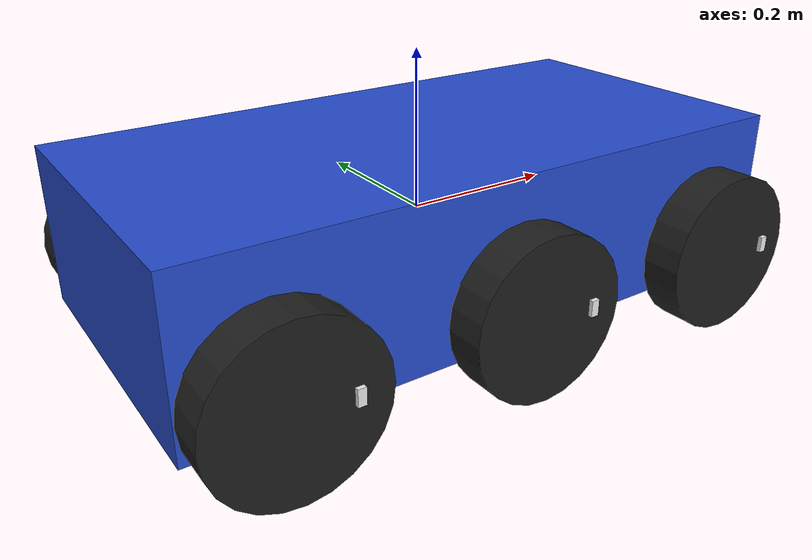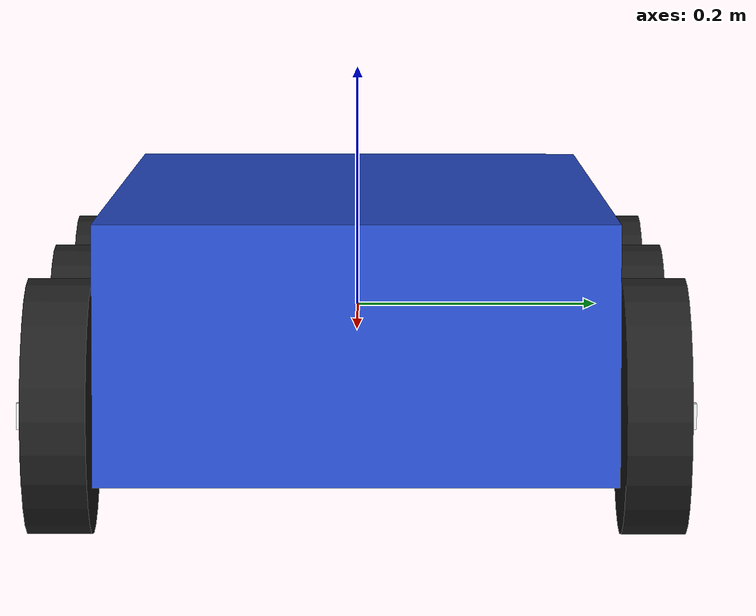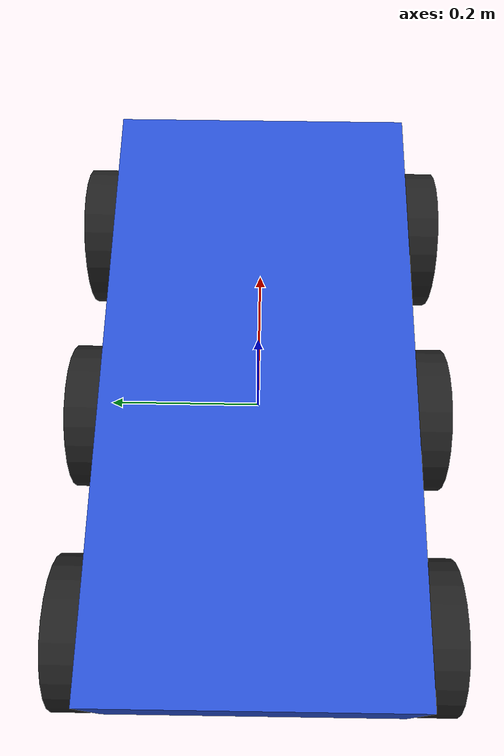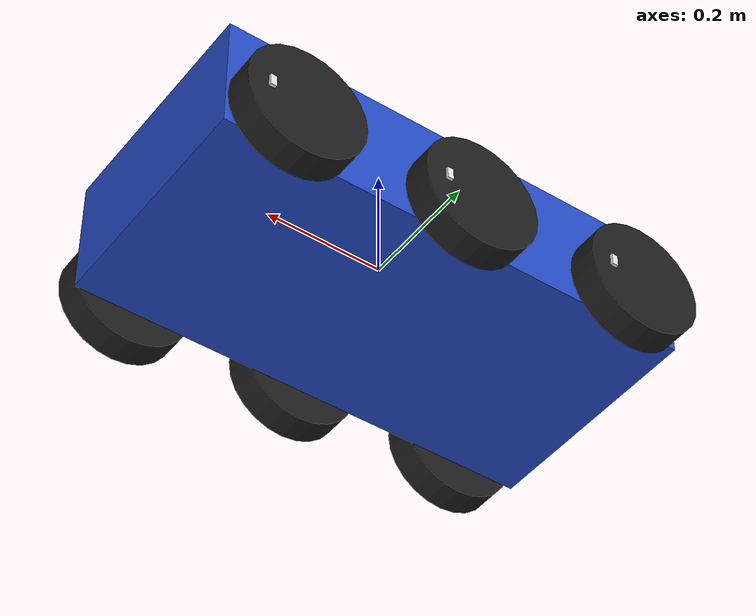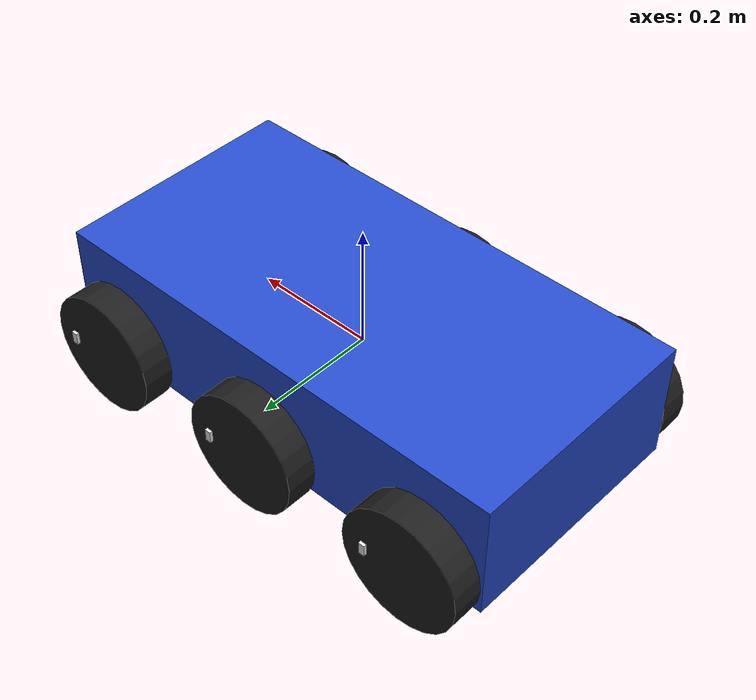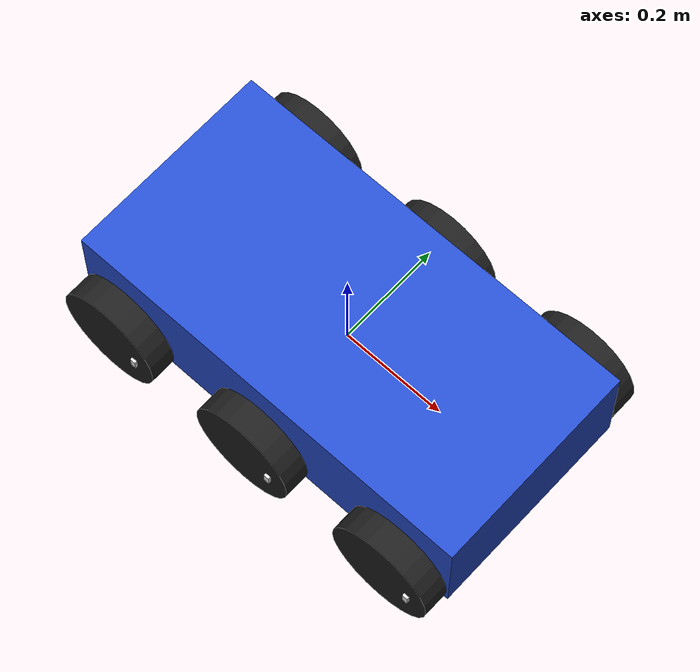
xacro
<?xml version="1.0"?>
<robot name="roscontrol" xmlns:xacro="http://ros.org/wiki/xacro">

    <xacro:property name="WheelSep" value="0.46"/>
    <xacro:property name="WheelRad" value="0.1"/>
    <xacro:property name="WheelLen" value="0.05"/>
    <xacro:property name="WheelPoss" value="0.15"/>
    <xacro:property name="WheelPossZ" value="-0.05"/>

    <xacro:macro name="default_inertial" params="mass">
        <inertial>
            <mass value="${mass}" />
            <inertia ixx="1.0" ixy="0.0" ixz="0.0" iyy="1.0" iyz="0.0" izz="1.0" />
        </inertial>
    </xacro:macro>

    <link name="base_link">
        <pose>0 0 0.1 0 0 0</pose>
        <visual>
            <geometry>
                <box size="0.8 0.4 0.2"/>
            </geometry>
        </visual>
        <collision>
            <geometry>
                <box size="0.8 0.4 0.2"/>
            </geometry>
        </collision>
        <xacro:default_inertial mass="15"/>
    </link>
    <gazebo reference="base_link">
        <material>Gazebo/Blue</material>
    </gazebo>

    <!-- wheels -->
    <xacro:macro name="wheels" params = "prefex reflect">
        <!-- back wheels -->
        <link name="${prefex}_back_wheel">
            <visual>
                <origin xyz="0 0 0" rpy="0 1.5707 1.5707"/>
                <geometry>
                    <cylinder length="${WheelLen}" radius="${WheelRad}"/>
                </geometry>
            </visual>
            <collision>
                <origin xyz="0 0 0" rpy="0 1.5707 1.5707"/>
                <geometry>
                    <cylinder length="${WheelLen}" radius="${WheelRad}"/>
                </geometry>
            </collision>
            <xacro:default_inertial mass="5"/>
        </link>
        <joint name="${prefex}_back_wheel_joint" type="continuous">
            <axis xyz="0 1 0" rpy="0 0 0" />
            <parent link="base_link"/>
            <child link="${prefex}_back_wheel"/>
            <origin rpy="0 0 0" xyz="-${WheelPoss*2} ${reflect*WheelSep/2} ${WheelPossZ}"/>
            <limit effort="10000" velocity="1000"/>
            <dynamics damping="1.0" friction="1.0"/>
        </joint>
        <gazebo reference="${prefex}_back_wheel">
            <material>Gazebo/Black</material>
        </gazebo>
        <link name="${prefex}_column_back">
            <visual>
                <geometry>
                    <box size="0.01 0.04 0.02"/>
                </geometry>
            </visual>
            <collision>
                <geometry>
                    <box size="0.01 0.04 0.02"/>
                </geometry>
            </collision>
            <xacro:default_inertial mass="0.01"/>
        </link>
        <joint name="${prefex}_back_wheel_coll_joint" type="fixed">
            <child link="${prefex}_column_back"/>
            <parent link="${prefex}_back_wheel"/>
            <origin rpy="0 0 0" xyz="0.06 ${reflect*0.01} 0"/>
        </joint>
        <gazebo reference="${prefex}_column_back">
            <material>Gazebo/White</material>
        </gazebo>

        <!-- middle wheels -->
        <link name="${prefex}_middle_wheel">
            <visual>
                <origin xyz="0 0 0" rpy="0 1.5707 1.5707"/>
                <geometry>
                    <cylinder length="${WheelLen}" radius="${WheelRad}"/>
                </geometry>
            </visual>
            <collision>
                <origin xyz="0 0 0" rpy="0 1.5707 1.5707"/>
                <geometry>
                    <cylinder length="${WheelLen}" radius="${WheelRad}"/>
                </geometry>
            </collision>
            <xacro:default_inertial mass="5"/>
        </link>
        <joint name="${prefex}_middle_wheel_joint" type="continuous">
            <axis xyz="0 1 0" rpy="0 0 0" />
            <parent link="base_link"/>
            <child link="${prefex}_middle_wheel"/>
            <origin rpy="0 0 0" xyz="0 ${reflect*WheelSep/2} ${WheelPossZ}"/>
            <limit effort="10000" velocity="1000"/>
            <dynamics damping="1.0" friction="1.0"/>
        </joint>
        <gazebo reference="${prefex}_middle_wheel">
            <material>Gazebo/Black</material>
        </gazebo>
        <link name="${prefex}_column_middle">
            <visual>
                <geometry>
                    <box size="0.01 0.04 0.02"/>
                </geometry>
            </visual>
            <collision>
                <geometry>
                    <box size="0.01 0.04 0.02"/>
                </geometry>
            </collision>
            <xacro:default_inertial mass="0.01"/>
        </link>
        <joint name="${prefex}_middle_wheel_coll_joint" type="fixed">
            <child link="${prefex}_column_middle"/>
            <parent link="${prefex}_middle_wheel"/>
            <origin rpy="0 0 0" xyz="0.06 ${reflect*0.01} 0"/>
        </joint>
        <gazebo reference="${prefex}_column_middle">
            <material>Gazebo/White</material>
        </gazebo>

        <!-- front wheels -->
        <link name="${prefex}_front_wheel">
            <visual>
                <origin xyz="0 0 0" rpy="0 1.5707 1.5707"/>
                <geometry>
                    <cylinder length="${WheelLen}" radius="${WheelRad}"/>
                </geometry>
            </visual>
            <collision>
                <origin xyz="0 0 0" rpy="0 1.5707 1.5707"/>
                <geometry>
                    <cylinder length="${WheelLen}" radius="${WheelRad}"/>
                </geometry>
            </collision>
            <xacro:default_inertial mass="5"/>
        </link>
        <joint name="${prefex}_front_wheel_joint" type="continuous">
            <axis xyz="0 1 0" rpy="0 0 0" />
            <parent link="base_link"/>
            <child link="${prefex}_front_wheel"/>
            <origin rpy="0 0 0" xyz="${WheelPoss*2} ${reflect*WheelSep/2} ${WheelPossZ}"/>
            <limit effort="10000" velocity="1000"/>
            <dynamics damping="1.0" friction="1.0"/>
        </joint>
        <gazebo reference="${prefex}_front_wheel">
            <material>Gazebo/Black</material>
        </gazebo>
        <link name="${prefex}_column_front">
            <visual>
                <geometry>
                    <box size="0.01 0.04 0.02"/>
                </geometry>
            </visual>
            <collision>
                <geometry>
                    <box size="0.01 0.04 0.02"/>
                </geometry>
            </collision>
            <xacro:default_inertial mass="0.01"/>
        </link>
        <joint name="${prefex}_front_wheel_coll_joint" type="fixed">
            <child link="${prefex}_column_front"/>
            <parent link="${prefex}_front_wheel"/>
            <origin rpy="0 0 0" xyz="0.06 ${reflect*0.01} 0"/>
        </joint>
        <gazebo reference="${prefex}_column_front">
            <material>Gazebo/White</material>
        </gazebo>
    </xacro:macro>

    <xacro:wheels prefex = "right" reflect = "-1"/>
    <xacro:wheels prefex = "left" reflect = "1"/>

    <!-- Gazebo plugin for ROS Control -->
    <gazebo>
        <plugin name="gazebo_ros_control" filename="libgazebo_ros_control.so">
            <robotNamespace>/</robotNamespace>
        </plugin>
    </gazebo>
    <gazebo>
        <plugin name="differential_drive_controller" filename="libgazebo_ros_diff_drive_multiwheel.so">

            <updateRate>50</updateRate>
            <leftJoints>left_back_wheel_joint left_middle_wheel_joint left_front_wheel_joint</leftJoints>
            <rightJoints>right_back_wheel_joint right_middle_wheel_joint right_front_wheel_joint</rightJoints>
            <wheelSeparation>${WheelSep}</wheelSeparation>
            <wheelDiameter>${WheelRad*2}</wheelDiameter>
            <wheelAcceleration>0.2</wheelAcceleration>
            <wheelTorque>5</wheelTorque>
            <commandTopic>diff_drive_controller/cmd_vel</commandTopic>
            <odometryTopic>odom</odometryTopic>
            <odometryFrame>odom</odometryFrame>
            <robotBaseFrame>base_link</robotBaseFrame>
            <odometrySource>1</odometrySource>
            <publishWheelTF>true</publishWheelTF>
            <publishOdomTF>true</publishOdomTF>
            <publishWheelJointState>true</publishWheelJointState>
            <legacyMode>false</legacyMode>
        </plugin>
    </gazebo>
</robot>
